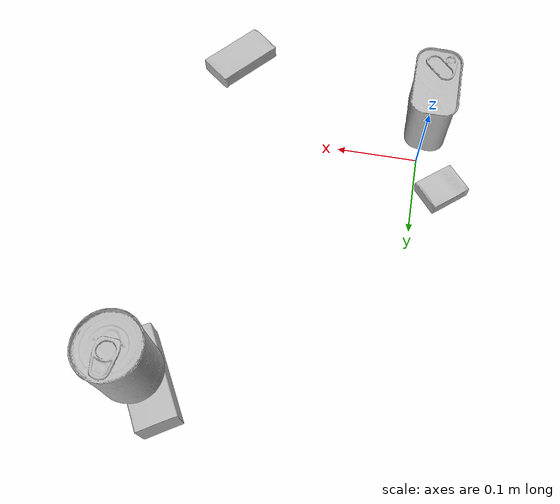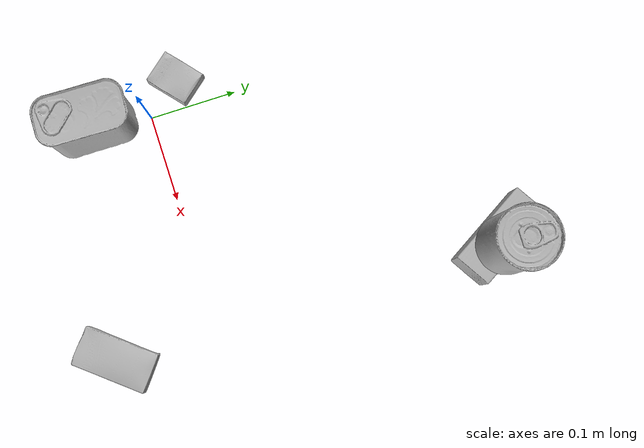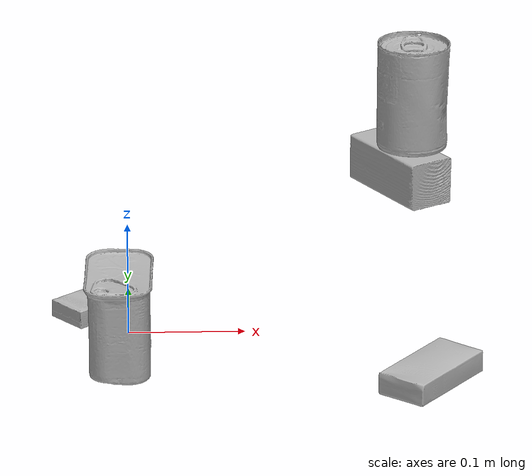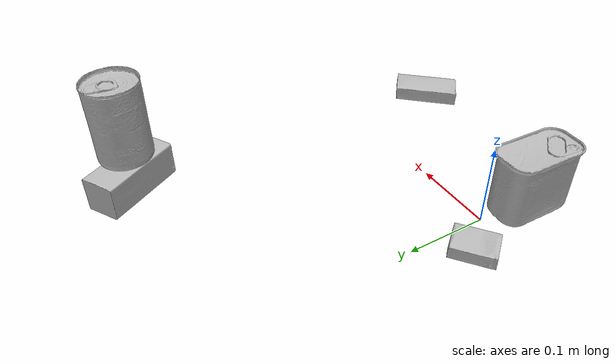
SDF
<sdf version="1.4">
  <world name="default">
    <light name="light1" type="point">
      <pose>0 0 1 0 0 0</pose>
      <diffuse>3 3 3 1</diffuse>
      <specular>3 3 3 1</specular>
    </light>
    <light name="light2" type="point">
      <pose>0 0.5 2 0 0 0</pose>
      <diffuse>1 1 1 1</diffuse>
      <specular>1 1 1 1</specular>
    </light>
    <light name="light3" type="point">
      <pose>0 0.5 2 0 0 0</pose>
      <diffuse>3 3 3 1</diffuse>
      <specular>3 3 3 1</specular>
    </light>
    <scene>
      <ambient>0.7 0.7 0.7</ambient>
    </scene>
    <model name="box1">
      <link name="link_box1">
        <collision name="default">
          <geometry>
            <mesh>
              <uri>model://sugar_box/collision_meshes/collision.obj</uri>
              <scale>0.5 0.5 0.5</scale>
            </mesh>
          </geometry>
          <surface>
            <friction>
              <ode>
                <mu>0.5</mu>
                <mu2>0.5</mu2>
              </ode>
            </friction>
          <contact>
        <ode>
            <max_vel>0</max_vel>
            <min_depth>0.0001</min_depth>
            <kp>1e8</kp>
        </ode>
    </contact></surface>
        </collision>
        <visual name="default">
          <geometry>
            <mesh>
              <uri>model://sugar_box/visual_meshes/visual.dae</uri>
              <scale>0.5 0.5 0.5</scale>
            </mesh>
          </geometry>
        </visual>
        <inertial>
          <mass>0.048160675913095474</mass>
          <pose>0.0005171863595023751 1.924554817378521e-05 -0.00018182402709499002 -0.0004046258638373534 0.0010506635215919557 0.0026153787891515894</pose>
          <inertia>
            <ixx>1.0031835e-05</ixx>
            <iyy>3.2424945e-05</iyy>
            <izz>3.8816543e-05</izz>
            <ixy>0</ixy>
            <ixz>0</ixz>
            <iyz>0</iyz>
          </inertia>
        </inertial>
      </link>
      <pose>0.25100743770599365 -0.11672738939523697 0.011399304494261742 0.0007754065355710615 -0.02343328736975403 0.8776328136699779</pose>
    </model>
    <model name="box2">
      <link name="link_box2">
        <collision name="default">
          <geometry>
            <mesh>
              <uri>model://cracker_box/collision_meshes/collision.obj</uri>
              <scale>0.25 0.25 0.25</scale>
            </mesh>
          </geometry>
          <surface>
            <friction>
              <ode>
                <mu>0.5</mu>
                <mu2>0.5</mu2>
              </ode>
            </friction>
          <contact>
        <ode>
            <max_vel>0</max_vel>
            <min_depth>0.0001</min_depth>
            <kp>1e8</kp>
        </ode>
    </contact></surface>
        </collision>
        <visual name="default">
          <geometry>
            <mesh>
              <uri>model://cracker_box/visual_meshes/visual.dae</uri>
              <scale>0.25 0.25 0.25</scale>
            </mesh>
          </geometry>
        </visual>
        <inertial>
          <mass>0.047952666878700256</mass>
          <pose>0.00023660370789002627 6.358561950037256e-05 -0.0004257383698131889 -0.0003162075404896153 -0.011106488669099107 0.002546795234185617</pose>
          <inertia>
            <ixx>7.623136e-06</ixx>
            <iyy>1.2587296e-05</iyy>
            <izz>1.7963224e-05</izz>
            <ixy>0</ixy>
            <ixz>0</ixz>
            <iyz>0</iyz>
          </inertia>
        </inertial>
      </link>
      <pose>-0.03327411040663719 0.04053230583667755 0.009096026420593262 -0.014050500856536675 -0.005016676464078782 0.694359517414418</pose>
    </model>
    <model name="box3">
      <link name="link_box3">
        <collision name="default">
          <geometry>
            <mesh>
              <uri>model://wood_block/collision_meshes/collision.obj</uri>
              <scale>0.5 0.5 0.5</scale>
            </mesh>
          </geometry>
          <surface>
            <friction>
              <ode>
                <mu>0.5</mu>
                <mu2>0.5</mu2>
              </ode>
            </friction>
          <contact>
        <ode>
            <max_vel>0</max_vel>
            <min_depth>0.0001</min_depth>
            <kp>1e8</kp>
        </ode>
    </contact></surface>
        </collision>
        <visual name="default">
          <geometry>
            <mesh>
              <uri>model://wood_block/visual_meshes/visual.dae</uri>
              <scale>0.5 0.5 0.5</scale>
            </mesh>
          </geometry>
        </visual>
        <inertial>
          <mass>0.27162742614746094</mass>
          <pose>-2.9066577553749084e-06 -0.000285404734313488 0.00013204291462898254 -0.05220780121661256 -0.005192696561201931 -0.006861379819720353</pose>
          <inertia>
            <ixx>9.086965e-05</ixx>
            <iyy>0.00028705722</iyy>
            <izz>0.0002859835</izz>
            <ixy>0</ixy>
            <ixz>0</ixz>
            <iyz>0</iyz>
          </inertia>
        </inertial>
      </link>
      <pose>0.25517576932907104 0.32862719893455505 0.022630246356129646 -0.0052632917892125935 0.005711535922294679 -1.0294822585553538</pose>
    </model>
    <model name="can1">
      <link name="link_can1">
        <collision name="default">
          <geometry>
            <mesh>
              <uri>model://tomato_soup_can/collision_meshes/collision.obj</uri>
              <scale>1.0 1.0 1.0</scale>
            </mesh>
          </geometry>
          <surface>
            <friction>
              <ode>
                <mu>0.5</mu>
                <mu2>0.5</mu2>
              </ode>
            </friction>
          <contact>
        <ode>
            <max_vel>0</max_vel>
            <min_depth>0.0001</min_depth>
            <kp>1e8</kp>
        </ode>
    </contact></surface>
        </collision>
        <visual name="default">
          <geometry>
            <mesh>
              <uri>model://tomato_soup_can/visual_meshes/visual.dae</uri>
              <scale>1.0 1.0 1.0</scale>
            </mesh>
          </geometry>
        </visual>
        <inertial>
          <mass>0.33680883049964905</mass>
          <pose>0.0001265227037947625 0.0001080552683561109 -0.0017973986687138677 0.007020065933643549 0.0004229964102555597 -0.009903579397299064</pose>
          <inertia>
            <ixx>0.00036928226</ixx>
            <iyy>0.0003671481</iyy>
            <izz>0.00019139561</izz>
            <ixy>0</ixy>
            <ixz>0</ixz>
            <iyz>0</iyz>
          </inertia>
        </inertial>
      </link>
      <pose>0.26592668890953064 0.32697775959968567 0.09666233509778976 0.004630124556544622 -0.004023302834625557 2.8194505375802743</pose>
    </model>
    <model name="can2">
      <link name="link_can2">
        <collision name="default">
          <geometry>
            <mesh>
              <uri>model://potted_meat_can/collision_meshes/collision.obj</uri>
              <scale>1.0 1.0 1.0</scale>
            </mesh>
          </geometry>
          <surface>
            <friction>
              <ode>
                <mu>0.5</mu>
                <mu2>0.5</mu2>
              </ode>
            </friction>
          <contact>
        <ode>
            <max_vel>0</max_vel>
            <min_depth>0.0001</min_depth>
            <kp>1e8</kp>
        </ode>
    </contact></surface>
        </collision>
        <visual name="default">
          <geometry>
            <mesh>
              <uri>model://potted_meat_can/visual_meshes/visual.dae</uri>
              <scale>1.0 1.0 1.0</scale>
            </mesh>
          </geometry>
        </visual>
        <inertial>
          <mass>0.5009446144104004</mass>
          <pose>0.00022888141393195838 -5.9891164710279554e-05 -0.0006367440801113844 -0.028093347044227477 -0.007232596108467961 0.015406262357490775</pose>
          <inertia>
            <ixx>0.0006444129</ixx>
            <iyy>0.0003915297</iyy>
            <izz>0.00046868768</izz>
            <ixy>0</ixy>
            <ixz>0</ixz>
            <iyz>0</iyz>
          </inertia>
        </inertial>
      </link>
      <pose>-0.0075077093206346035 -0.06424685567617416 0.04212800785899162 3.0369778201030176e-08 -5.184685479336497e-07 -0.03644148865899516</pose>
    </model>
  <physics type="ode">
      <max_contacts>50</max_contacts>
      <ode>
        <solver>
          <type>quick</type>
          <iters>75</iters>
        </solver>
        <constraints>
          <contact_max_correcting_vel>0</contact_max_correcting_vel>
          <contact_surface_layer>0</contact_surface_layer>
        </constraints>
      </ode>
    </physics></world>
</sdf>
